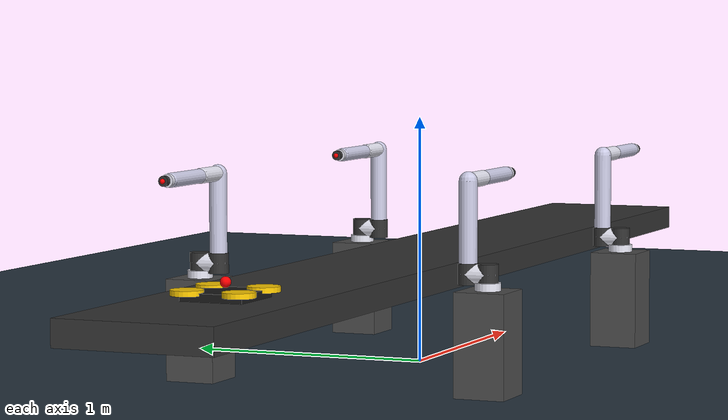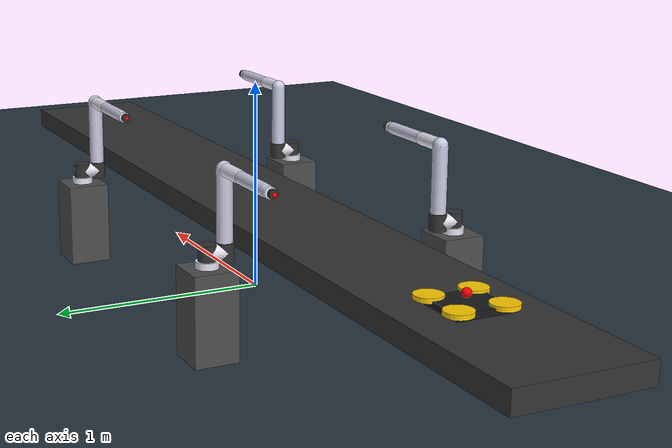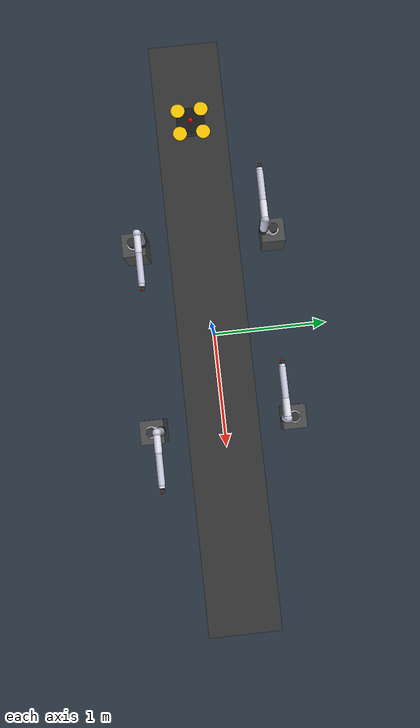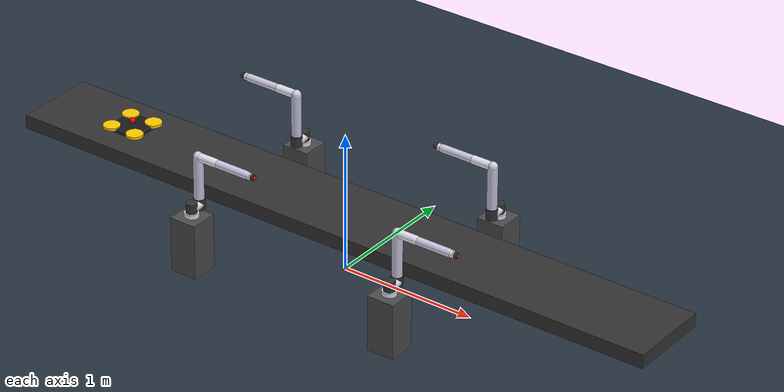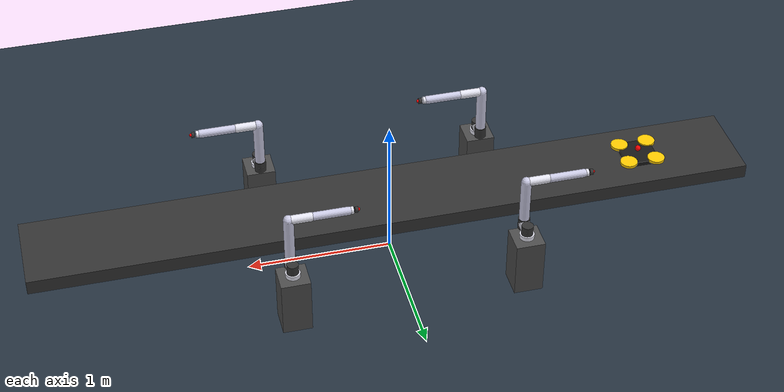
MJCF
<mujoco model="z1_factory_primitives">
    <compiler angle="radian" autolimits="true"/>
    <option integrator="implicitfast" timestep="0.002"/>

    <visual>
        <rgba haze="0.15 0.25 0.35 1"/>
        <quality shadowsize="4096"/>
    </visual>

    <default>
        <default class="z1">
            <joint damping="5" frictionloss="0.5"/>
            <motor ctrlrange="-50 50"/>
            <geom type="capsule" size="0.035" rgba="0.9 0.9 0.95 1" material="metal"/>
        </default>
        <default class="visual_joint">
            <geom type="cylinder" size="0.04 0.04" rgba="0.2 0.2 0.2 1" fromto="0 0 -0.04 0 0 0.04"/>
        </default>
    </default>

    <asset>
        <texture type="skybox" builtin="gradient" rgb1="0.3 0.5 0.7" rgb2="0 0 0" width="512" height="512"/>
        <texture type="2d" name="grid" builtin="checker" mark="edge" rgb1="0.1 0.15 0.2" rgb2="0.2 0.25 0.3" width="300" height="300"/>
        <material name="floor_mat" texture="grid" texrepeat="5 5" reflectance="0.2"/>
        <material name="metal" shininess="0.8" reflectance="0.5"/>
    </asset>

    <worldbody>
        <light pos="0 0 5" diffuse="1 1 1" dir="0 0 -1" castshadow="true"/>
        <geom name="floor" size="5 5 0.01" type="plane" material="floor_mat"/>

        <body name="conveyor" pos="0 0 0.4">
            <geom type="box" size="2.5 0.3 0.05" rgba="0.2 0.2 0.2 1"/>

            <body name="drone_carrier" pos="-1.8 0 0.06">
                <joint name="belt_joint" type="slide" axis="1 0 0" range="-2.2 2.2"/>
                <geom type="box" size="0.12 0.12 0.02" rgba="0.1 0.1 0.1 1"/>
                <geom type="cylinder" size="0.06 0.01" pos="0.1 0.1 0.02" rgba="1 0.8 0 1"/> <geom type="cylinder" size="0.06 0.01" pos="0.1 -0.1 0.02" rgba="1 0.8 0 1"/>
                <geom type="cylinder" size="0.06 0.01" pos="-0.1 0.1 0.02" rgba="1 0.8 0 1"/>
                <geom type="cylinder" size="0.06 0.01" pos="-0.1 -0.1 0.02" rgba="1 0.8 0 1"/>

                <geom name="led_red" type="sphere" size="0.02" pos="0 0 0.05" rgba="1 0 0 1"/>
            </body>
        </body>

        <body name="L1_base" pos="-0.8 -0.6 0" euler="0 0 0">
            <geom type="box" size="0.1 0.1 0.2" pos="0 0 0.2" rgba="0.3 0.3 0.3 1"/>

            <body name="L1_l0" pos="0 0 0.4" childclass="z1">
                <geom type="cylinder" size="0.05 0.03"/>

                <body name="L1_l1" pos="0 0 0.06">
                    <joint name="L1_j1" axis="0 0 1"/>
                    <geom fromto="0 0 0 0 0.08 0" size="0.04"/> <geom class="visual_joint" pos="0 0.08 0" euler="1.57 0 0"/>

                    <body name="L1_l2" pos="0 0.08 0">
                        <joint name="L1_j2" axis="0 1 0"/>
                        <geom fromto="0 0 0 0 0 0.35" size="0.035" rgba="0.8 0.8 0.9 1"/> <geom class="visual_joint" pos="0 0 0.35" euler="1.57 0 0"/>

                        <body name="L1_l3" pos="0 0 0.35">
                            <joint name="L1_j3" axis="0 1 0"/>
                            <geom fromto="0 0 0 0.15 0 0" size="0.03"/> <body name="L1_l4" pos="0.15 0 0">
                                <joint name="L1_j4" axis="0 1 0"/>
                                <geom fromto="0 0 0 0.25 0 0" size="0.028" rgba="0.8 0.8 0.9 1"/>

                                <body name="L1_l5" pos="0.25 0 0">
                                    <joint name="L1_j5" axis="1 0 0"/>
                                    <geom type="cylinder" size="0.025 0.03" euler="0 1.57 0"/>

                                    <body name="L1_l6" pos="0.05 0 0">
                                        <joint name="L1_j6" axis="1 0 0"/>
                                        <geom type="cylinder" size="0.02 0.01" euler="0 1.57 0" rgba="0.2 0.2 0.2 1"/>
                                        <geom type="sphere" size="0.01" pos="0.015 0 0" rgba="1 0 0 1"/>
                                    </body>
                                </body>
                            </body>
                        </body>
                    </body>
                </body>
            </body>
        </body>

        <body name="L2_base" pos="0.8 -0.6 0" euler="0 0 0">
            <geom type="box" size="0.1 0.1 0.2" pos="0 0 0.2" rgba="0.3 0.3 0.3 1"/>

            <body name="L2_l0" pos="0 0 0.4" childclass="z1">
                <geom type="cylinder" size="0.05 0.03"/>

                <body name="L2_l1" pos="0 0 0.06">
                    <joint name="L2_j1" axis="0 0 1"/>
                    <geom fromto="0 0 0 0 0.08 0" size="0.04"/> <geom class="visual_joint" pos="0 0.08 0" euler="1.57 0 0"/>

                    <body name="L2_l2" pos="0 0.08 0">
                        <joint name="L2_j2" axis="0 1 0"/>
                        <geom fromto="0 0 0 0 0 0.35" size="0.035" rgba="0.8 0.8 0.9 1"/> <geom class="visual_joint" pos="0 0 0.35" euler="1.57 0 0"/>

                        <body name="L2_l3" pos="0 0 0.35">
                            <joint name="L2_j3" axis="0 1 0"/>
                            <geom fromto="0 0 0 0.15 0 0" size="0.03"/> <body name="L2_l4" pos="0.15 0 0">
                                <joint name="L2_j4" axis="0 1 0"/>
                                <geom fromto="0 0 0 0.25 0 0" size="0.028" rgba="0.8 0.8 0.9 1"/>

                                <body name="L2_l5" pos="0.25 0 0">
                                    <joint name="L2_j5" axis="1 0 0"/>
                                    <geom type="cylinder" size="0.025 0.03" euler="0 1.57 0"/>

                                    <body name="L2_l6" pos="0.05 0 0">
                                        <joint name="L2_j6" axis="1 0 0"/>
                                        <geom type="cylinder" size="0.02 0.01" euler="0 1.57 0" rgba="0.2 0.2 0.2 1"/>
                                        <geom type="sphere" size="0.01" pos="0.015 0 0" rgba="1 0 0 1"/>
                                    </body>
                                </body>
                            </body>
                        </body>
                    </body>
                </body>
            </body>
        </body>

        <body name="R1_base" pos="-0.8 0.6 0" euler="0 0 3.14">
            <geom type="box" size="0.1 0.1 0.2" pos="0 0 0.2" rgba="0.3 0.3 0.3 1"/>

            <body name="R1_l0" pos="0 0 0.4" childclass="z1">
                <geom type="cylinder" size="0.05 0.03"/>

                <body name="R1_l1" pos="0 0 0.06">
                    <joint name="R1_j1" axis="0 0 1"/>
                    <geom fromto="0 0 0 0 0.08 0" size="0.04"/> <geom class="visual_joint" pos="0 0.08 0" euler="1.57 0 0"/>

                    <body name="R1_l2" pos="0 0.08 0">
                        <joint name="R1_j2" axis="0 1 0"/>
                        <geom fromto="0 0 0 0 0 0.35" size="0.035" rgba="0.8 0.8 0.9 1"/> <geom class="visual_joint" pos="0 0 0.35" euler="1.57 0 0"/>

                        <body name="R1_l3" pos="0 0 0.35">
                            <joint name="R1_j3" axis="0 1 0"/>
                            <geom fromto="0 0 0 0.15 0 0" size="0.03"/> <body name="R1_l4" pos="0.15 0 0">
                                <joint name="R1_j4" axis="0 1 0"/>
                                <geom fromto="0 0 0 0.25 0 0" size="0.028" rgba="0.8 0.8 0.9 1"/>

                                <body name="R1_l5" pos="0.25 0 0">
                                    <joint name="R1_j5" axis="1 0 0"/>
                                    <geom type="cylinder" size="0.025 0.03" euler="0 1.57 0"/>

                                    <body name="R1_l6" pos="0.05 0 0">
                                        <joint name="R1_j6" axis="1 0 0"/>
                                        <geom type="cylinder" size="0.02 0.01" euler="0 1.57 0" rgba="0.2 0.2 0.2 1"/>
                                        <geom type="sphere" size="0.01" pos="0.015 0 0" rgba="1 0 0 1"/>
                                    </body>
                                </body>
                            </body>
                        </body>
                    </body>
                </body>
            </body>
        </body>

        <body name="R2_base" pos="0.8 0.6 0" euler="0 0 3.14">
            <geom type="box" size="0.1 0.1 0.2" pos="0 0 0.2" rgba="0.3 0.3 0.3 1"/>

            <body name="R2_l0" pos="0 0 0.4" childclass="z1">
                <geom type="cylinder" size="0.05 0.03"/>

                <body name="R2_l1" pos="0 0 0.06">
                    <joint name="R2_j1" axis="0 0 1"/>
                    <geom fromto="0 0 0 0 0.08 0" size="0.04"/> <geom class="visual_joint" pos="0 0.08 0" euler="1.57 0 0"/>

                    <body name="R2_l2" pos="0 0.08 0">
                        <joint name="R2_j2" axis="0 1 0"/>
                        <geom fromto="0 0 0 0 0 0.35" size="0.035" rgba="0.8 0.8 0.9 1"/> <geom class="visual_joint" pos="0 0 0.35" euler="1.57 0 0"/>

                        <body name="R2_l3" pos="0 0 0.35">
                            <joint name="R2_j3" axis="0 1 0"/>
                            <geom fromto="0 0 0 0.15 0 0" size="0.03"/> <body name="R2_l4" pos="0.15 0 0">
                                <joint name="R2_j4" axis="0 1 0"/>
                                <geom fromto="0 0 0 0.25 0 0" size="0.028" rgba="0.8 0.8 0.9 1"/>

                                <body name="R2_l5" pos="0.25 0 0">
                                    <joint name="R2_j5" axis="1 0 0"/>
                                    <geom type="cylinder" size="0.025 0.03" euler="0 1.57 0"/>

                                    <body name="R2_l6" pos="0.05 0 0">
                                        <joint name="R2_j6" axis="1 0 0"/>
                                        <geom type="cylinder" size="0.02 0.01" euler="0 1.57 0" rgba="0.2 0.2 0.2 1"/>
                                        <geom type="sphere" size="0.01" pos="0.015 0 0" rgba="1 0 0 1"/>
                                    </body>
                                </body>
                            </body>
                        </body>
                    </body>
                </body>
            </body>
        </body>

    </worldbody>
    <actuator>
        <velocity name="belt_v" joint="belt_joint" kv="200"/>
        <position name="L1_p1" joint="L1_j1" kp="300" kv="20"/>
        <position name="L1_p2" joint="L1_j2" kp="300" kv="20"/>
        <position name="L1_p3" joint="L1_j3" kp="300" kv="20"/>
        <position name="L1_p4" joint="L1_j4" kp="300" kv="20"/>
        <position name="L1_p5" joint="L1_j5" kp="300" kv="20"/>
        <position name="L1_p6" joint="L1_j6" kp="300" kv="20"/>
        <position name="L2_p1" joint="L2_j1" kp="300" kv="20"/>
        <position name="L2_p2" joint="L2_j2" kp="300" kv="20"/>
        <position name="L2_p3" joint="L2_j3" kp="300" kv="20"/>
        <position name="L2_p4" joint="L2_j4" kp="300" kv="20"/>
        <position name="L2_p5" joint="L2_j5" kp="300" kv="20"/>
        <position name="L2_p6" joint="L2_j6" kp="300" kv="20"/>
        <position name="R1_p1" joint="R1_j1" kp="300" kv="20"/>
        <position name="R1_p2" joint="R1_j2" kp="300" kv="20"/>
        <position name="R1_p3" joint="R1_j3" kp="300" kv="20"/>
        <position name="R1_p4" joint="R1_j4" kp="300" kv="20"/>
        <position name="R1_p5" joint="R1_j5" kp="300" kv="20"/>
        <position name="R1_p6" joint="R1_j6" kp="300" kv="20"/>
        <position name="R2_p1" joint="R2_j1" kp="300" kv="20"/>
        <position name="R2_p2" joint="R2_j2" kp="300" kv="20"/>
        <position name="R2_p3" joint="R2_j3" kp="300" kv="20"/>
        <position name="R2_p4" joint="R2_j4" kp="300" kv="20"/>
        <position name="R2_p5" joint="R2_j5" kp="300" kv="20"/>
        <position name="R2_p6" joint="R2_j6" kp="300" kv="20"/>

    </actuator>
</mujoco>
